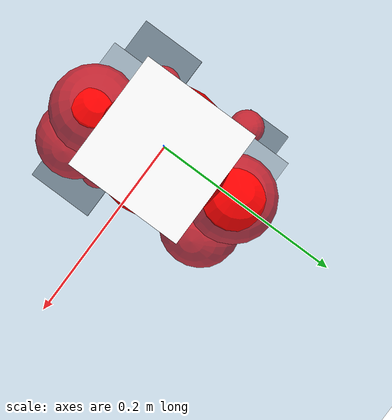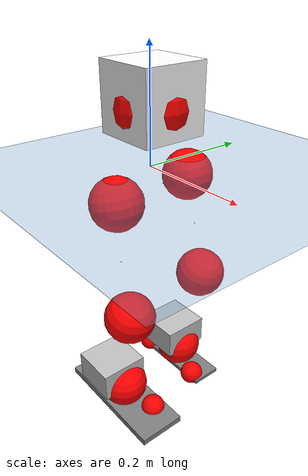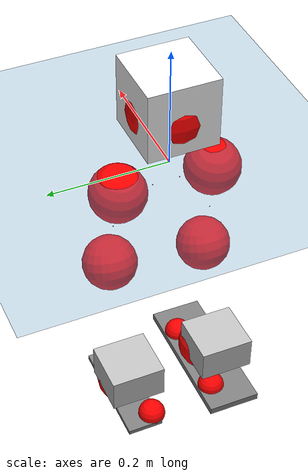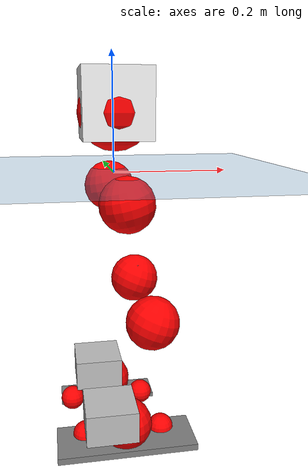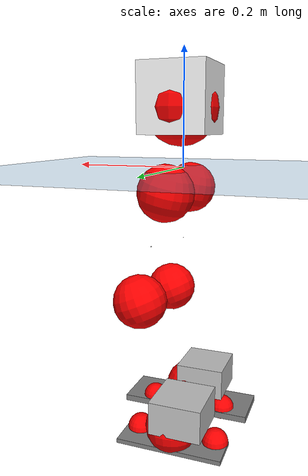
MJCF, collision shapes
<mujoco model="pi_12dof_release_v1">
  <compiler angle="radian" assetdir="assets" balanceinertia="true" inertiafromgeom="false"/>

  <option timestep="0.005" density="1.2" viscosity="2e-05"/>

  <size nkey="1"/>

  <visual>
    <quality shadowsize="8192"/>
    <map shadowclip="0.5"/>
  </visual>

  <default>
    <default class="/">
      <joint armature="0.01" damping="0.01" frictionloss="0.01"/>
      <geom contype="0" conaffinity="0" group="1" solref="-1000 -80"/>
      <site size="0.01 0.005 0.005" group="5"/>
      <general forcelimited="true" biastype="affine" gainprm="20" biasprm="0 -20 -0.5"/>
      <default class="foot">
        <geom size="0.0845 0.036 0.005" type="box" condim="6" group="4" priority="1" friction="0.9 0.2 0.2" solimp="0.015 1 0.005"/>
      </default>
      <default class="reward_collision_sphere">
        <geom group="5" rgba="1 0 0 1"/>
      </default>
    </default>
  </default>

  <asset>
    <texture type="skybox" colorspace="auto" name="//unnamed_texture_0" builtin="gradient" rgb1="0.95 0.95 0.95" rgb2="0.95 0.95 0.95" width="100" height="600"/>
    <texture type="2d" colorspace="auto" name="texplane" builtin="checker" rgb1="0.345 0.575 0.748" rgb2="0.345 0.575 0.748" markrgb="1 1 1" width="512" height="512"/>
    <material name="MatPlane" class="/" texture="texplane" texuniform="true" texrepeat="2 2" specular="0.9"/>
    <mesh name="baselink_1" class="/" file="baselink_1.STL"/>
    <mesh name="r_hip_pitch_link" class="/" file="r_hip_pitch_link.STL"/>
    <mesh name="r_hip_roll_link" class="/" file="r_hip_roll_link.STL"/>
    <mesh name="r_thigh_link" class="/" file="r_thigh_link.STL"/>
    <mesh name="r_calf_link" class="/" file="r_calf_link.STL"/>
    <mesh name="r_ankle_pitch_link" class="/" file="r_ankle_pitch_link.STL"/>
    <mesh name="r_ankle_roll_link" class="/" file="r_ankle_roll_link.STL"/>
    <mesh name="l_hip_pitch_link" class="/" file="l_hip_pitch_link.STL"/>
    <mesh name="l_hip_roll_link" class="/" file="l_hip_roll_link.STL"/>
    <mesh name="l_thigh_link" class="/" file="l_thigh_link.STL"/>
    <mesh name="l_calf_link" class="/" file="l_calf_link.STL"/>
    <mesh name="l_ankle_pitch_link" class="/" file="l_ankle_pitch_link.STL"/>
    <mesh name="l_ankle_roll_link" class="/" file="l_ankle_roll_link.STL"/>
  </asset>

  <worldbody>
    <geom name="floor" class="/" size="100 100 0.125" type="plane" group="0" material="MatPlane"/>
    <light name="toplight_shadow" class="/" pos="0 0 5" dir="0.0990148 0.0990148 -0.990148" type="directional" ambient="0.04 0.04 0.04" diffuse="0.55 0.55 0.55" specular="0.12 0.12 0.12"/>
    <light name="toplight_fill" class="/" pos="0 0 5" dir="0.0990148 0.0990148 -0.990148" type="directional" castshadow="false" ambient="0.04 0.04 0.04" diffuse="0.3 0.3 0.3" specular="0.08 0.08 0.08"/>
    <body name="trunk" pos="0.0039046 0.00204764 0.00152813" quat="0.999999 0.00100455 0.000572206 0.000918551">
      <inertial pos="0.004314 -0.00234344 0.0597233" quat="0.704529 0.00117063 -0.0116459 0.709578" mass="3.57814" diaginertia="0.0113433 0.0115128 0.0208298"/>
      <joint name="//unnamed_joint_0" type="free"/>
      <geom name="//unnamed_geom_1" class="/" type="mesh" density="0" rgba="1 1 1 1" mesh="baselink_1"/>
      <geom name="//unnamed_geom_2" class="/" size="0.0585532 0.0585532 0.0585532" pos="0 0 0.112888" type="box" rgba="1 1 1 1"/>
      <geom name="//unnamed_geom_3" class="reward_collision_sphere" size="0.0644086" pos="0 0 0.0987768"/>
      <site name="imu" class="/" pos="-0.010352 0.0447799 -0.000299049" size="0.0117106"/>
      <camera name="track" class="/" pos="0 -2.10166 0" quat="0.707107 0.707107 0 0" mode="trackcom"/>
      <camera name="ego_camera" class="/" pos="0.078845 0 0.253997" quat="-0.5 -0.5 0.5 0.5"/>
      <body name="r_hip_pitch_link" pos="0.00361063 -0.023284 -0.0439858" quat="0.992328 0.00370517 -0.123566 -0.00187136">
        <inertial pos="0.00255892 -0.0592113 -0.000224571" quat="-0.0289339 0.69616 -0.0167154 0.717109" mass="0.540546" diaginertia="0.000126499 0.000114143 0.000414059"/>
        <joint name="r_hip_pitch_joint" class="/" pos="0 0 0" axis="-0.00330127 -0.999994 0.00114838" stiffness="0.0322391" range="-1.71543 1.30083" armature="0.0128271" damping="0.0367006" frictionloss="0.0122358"/>
        <geom name="//unnamed_geom_4" class="/" type="mesh" density="0" rgba="0.75294 0.75294 0.75294 1" mesh="r_hip_pitch_link"/>
        <geom name="//unnamed_geom_5" class="/" size="0.000585532 0.000585532 0.000585532" type="box" rgba="0.75294 0.75294 0.75294 1"/>
        <body name="r_hip_roll_link" pos="0.00456292 -0.0592164 -0.000911606" quat="0.999999 0.00101158 -0.000206302 4.47187e-05">
          <inertial pos="-0.00104775 0.00724855 -0.0769066" quat="0.707614 -0.0776629 -0.0854112 0.697105" mass="0.624085" diaginertia="0.000449724 0.000373931 0.000751726"/>
          <joint name="r_hip_roll_joint" class="/" pos="0 0 0" axis="-0.999806 -0.00849619 0.0177422" stiffness="0.00964954" range="-0.0696289 0.359824" armature="0.0118362" damping="0.00397943" frictionloss="0.011459"/>
          <geom name="//unnamed_geom_6" class="/" type="mesh" density="0" rgba="0.75294 0.75294 0.75294 1" mesh="r_hip_roll_link"/>
          <geom name="//unnamed_geom_7" class="/" size="0.000585532 0.000585532 0.000585532" type="box" rgba="0.75294 0.75294 0.75294 1"/>
          <geom name="//unnamed_geom_8" class="reward_collision_sphere" size="0.0468426"/>
          <body name="r_thigh_link" pos="-0.00936069 -0.00769762 -0.101699" quat="1 -7.80162e-05 2.70519e-05 0.000140965">
            <inertial pos="-0.000241569 0.0033282 -0.0706091" quat="0.736507 0.676425 -0.000333733 0.00233281" mass="0.167683" diaginertia="0.000155467 0.000120913 0.000326519"/>
            <joint name="r_thigh_joint" class="/" pos="0 0 0" axis="-0.0136576 0.00529465 -0.999893" range="-0.286215 0.577015" armature="0.0128087" damping="0.0204771" frictionloss="0.0169967"/>
            <geom name="//unnamed_geom_9" class="/" type="mesh" density="0" rgba="0.75294 0.75294 0.75294 1" mesh="r_thigh_link"/>
            <geom name="//unnamed_geom_10" class="/" size="0.000585532 0.000585532 0.000585532" type="box" rgba="0.75294 0.75294 0.75294 1"/>
            <body name="r_calf_link" pos="-0.0011938 -0.00413948 -0.106917" quat="0.947651 4.71215e-06 0.319307 4.58366e-05">
              <inertial pos="-0.00166238 0.0023672 -0.0985784" quat="0.999171 -0.00864885 0.00490168 0.0394854" mass="1.18921" diaginertia="0.00418109 0.00403312 0.000903969"/>
              <joint name="r_calf_joint" class="/" pos="0 0 0" axis="0.00025053 -0.999953 -0.00972983" stiffness="0.0320446" range="-1.78849 0.658998" armature="0.0147421" damping="0.0183875" frictionloss="0.0109267"/>
              <geom name="//unnamed_geom_11" class="/" type="mesh" density="0" rgba="0.75294 0.75294 0.75294 1" mesh="r_calf_link"/>
              <geom name="//unnamed_geom_12" class="/" size="0.000585532 0.000585532 0.000585532" type="box" rgba="0.75294 0.75294 0.75294 1"/>
              <geom name="//unnamed_geom_13" class="reward_collision_sphere" size="0.0468426"/>
              <body name="r_ankle_pitch_link" pos="-0.00102143 0.00321815 -0.192354" quat="0.98012 0.000209505 -0.198407 0.000127647">
                <inertial pos="0.00405458 0.00381165 0.0076813" quat="-0.0010385 0.729312 0.030429 0.683503" mass="0.258225" diaginertia="0.00036615 0.000257769 0.000607813"/>
                <joint name="r_ankle_pitch_joint" class="/" pos="0 0 0" axis="2.84994e-05 -1 -0.000296669" range="-1.30492 0.333249" armature="0.0116093" damping="0.00341064" frictionloss="0.00814941"/>
                <geom name="//unnamed_geom_14" class="/" type="mesh" density="0" rgba="0.75294 0.75294 0.75294 1" mesh="r_ankle_pitch_link"/>
                <geom name="//unnamed_geom_15" class="/" size="0.0456715 0.0468426 0.0292766" type="box" rgba="0.75294 0.75294 0.75294 1"/>
                <body name="r_ankle_roll_link" pos="0.0830976 0.00720305 0.00309802" quat="1 -8.13814e-05 -3.93409e-05 -0.000116063">
                  <inertial pos="-0.0239172 0.00222086 -0.0297178" quat="0.554602 0.428419 0.433266 0.566706" mass="0.984357" diaginertia="0.00161179 0.00131349 0.0019181"/>
                  <joint name="r_ankle_roll_joint" class="/" pos="0 0 0" axis="-0.999431 0.00371788 -0.0335325" stiffness="0.00201297" range="-0.218148 0.273947" armature="0.0163202" damping="0" frictionloss="0.0129048"/>
                  <geom name="//unnamed_geom_16" class="/" type="mesh" density="0" rgba="0.75294 0.75294 0.75294 1" mesh="r_ankle_roll_link"/>
                  <geom name="//unnamed_geom_17" class="/" type="mesh" rgba="0.75294 0.75294 0.75294 1" mesh="r_ankle_roll_link"/>
                  <geom name="right_foot" class="foot" size="0.125626 0.045533 0.00605269" pos="-0.0536146 0 -0.0620883"/>
                  <geom name="//unnamed_geom_19" class="reward_collision_sphere" size="0.0468426" pos="-0.0525633 0 -0.0282219"/>
                  <geom name="//unnamed_geom_20" class="reward_collision_sphere" size="0.0234213" pos="0.015769 0.0210166 -0.0564439"/>
                  <geom name="//unnamed_geom_21" class="reward_collision_sphere" size="0.0234213" pos="-0.126152 0.0210166 -0.0564439"/>
                  <site name="right_foot" class="foot" pos="-0.0536146 0 -0.0620883" size="0.0117106"/>
                </body>
              </body>
            </body>
          </body>
        </body>
      </body>
      <body name="l_hip_pitch_link" pos="-0.00265154 0.0257578 -0.0392405" quat="0.992216 0.000138023 -0.124528 0.000394131">
        <inertial pos="1.32697e-05 0.0542356 0.00647112" quat="-0.043808 0.710285 0.0234395 0.702158" mass="0.557049" diaginertia="0.000148348 0.000136634 0.000562966"/>
        <joint name="l_hip_pitch_joint" class="/" pos="0 0 0" axis="0.0061124 0.999924 -0.0106741" range="-1.33256 1.7974" armature="0.00893324" damping="0.0292032" frictionloss="0.0105409"/>
        <geom name="//unnamed_geom_22" class="/" type="mesh" density="0" rgba="0.75294 0.75294 0.75294 1" mesh="l_hip_pitch_link"/>
        <geom name="//unnamed_geom_23" class="/" size="0.000585532 0.000585532 0.000585532" type="box" rgba="0.75294 0.75294 0.75294 1"/>
        <body name="l_hip_roll_link" pos="0.000488268 0.0581141 0.00249159" quat="1 0.000165077 -4.05951e-05 -0.000176074">
          <inertial pos="0.00436084 0.00278092 -0.0770043" quat="0.689783 -0.0567585 -0.0563108 0.719589" mass="0.605523" diaginertia="0.000464288 0.000359857 0.000775189"/>
          <joint name="l_hip_roll_joint" class="/" pos="0 0 0" axis="-1 -0.000430032 -6.22711e-06" range="-0.35248 0.0197601" armature="0.0128382" damping="0.0469214" frictionloss="0.0117095"/>
          <geom name="//unnamed_geom_24" class="/" type="mesh" density="0" rgba="0.75294 0.75294 0.75294 1" mesh="l_hip_roll_link"/>
          <geom name="//unnamed_geom_25" class="/" size="0.000585532 0.000585532 0.000585532" type="box" rgba="0.75294 0.75294 0.75294 1"/>
          <geom name="//unnamed_geom_26" class="reward_collision_sphere" size="0.0468426"/>
          <body name="l_thigh_link" pos="0.00272783 -0.000898287 -0.0930668" quat="1 0.000560403 -0.000454818 -0.000218344">
            <inertial pos="-0.00225029 0.00134919 -0.070403" quat="0.659562 0.75152 0.00530178 -0.0129327" mass="0.190761" diaginertia="0.000161238 0.000120702 0.000323067"/>
            <joint name="l_thigh_joint" class="/" pos="0 0 0" axis="-0.00173888 0.00201983 -0.999996" stiffness="0.0404362" range="-0.594096 0.335593" armature="0.0119667" damping="0.00460119" frictionloss="0.0104729"/>
            <geom name="//unnamed_geom_27" class="/" type="mesh" density="0" rgba="0.75294 0.75294 0.75294 1" mesh="l_thigh_link"/>
            <geom name="//unnamed_geom_28" class="/" size="0.000585532 0.000585532 0.000585532" type="box" rgba="0.75294 0.75294 0.75294 1"/>
            <body name="l_calf_link" pos="-0.00338767 -0.000948895 -0.101169" quat="0.947667 0.00010683 0.31926 -7.66441e-06">
              <inertial pos="0.000373598 -0.00250804 -0.0946481" quat="0.999986 0.00282848 -0.0015989 0.00415063" mass="1.42834" diaginertia="0.00487373 0.00484442 0.00107055"/>
              <joint name="l_calf_joint" class="/" pos="0 0 0" axis="-0.00310376 0.999973 0.0066782" stiffness="0.00992364" range="-0.821798 1.51626" armature="0.0116223" damping="0.00815752" frictionloss="0.0118922"/>
              <geom name="//unnamed_geom_29" class="/" type="mesh" density="0" rgba="0.75294 0.75294 0.75294 1" mesh="l_calf_link"/>
              <geom name="//unnamed_geom_30" class="/" size="0.000585532 0.000585532 0.000585532" type="box" rgba="0.75294 0.75294 0.75294 1"/>
              <geom name="//unnamed_geom_31" class="reward_collision_sphere" size="0.0468426"/>
              <body name="l_ankle_pitch_link" pos="0.000934889 0.000955355 -0.205272" quat="0.980162 0.000131721 -0.1982 0.000323974">
                <inertial pos="0.00763925 -0.00480858 0.000701644" quat="-0.00562743 0.707066 0.00198693 0.707122" mass="0.321465" diaginertia="0.000416382 0.000295123 0.000668888"/>
                <joint name="l_ankle_pitch_joint" class="/" pos="0 0 0" axis="0.00780478 0.999969 0.000966526" range="-0.369829 1.2751" armature="0.014393" damping="0" frictionloss="0.0125692"/>
                <geom name="//unnamed_geom_32" class="/" type="mesh" density="0" rgba="0.75294 0.75294 0.75294 1" mesh="l_ankle_pitch_link"/>
                <geom name="//unnamed_geom_33" class="/" size="0.0456715 0.0468426 0.0292766" type="box" rgba="0.75294 0.75294 0.75294 1"/>
                <body name="l_ankle_roll_link" pos="0.0712933 0.00160378 -0.00441417" quat="0.999999 -0.000314932 -0.000114537 0.000950379">
                  <inertial pos="-0.0257815 -9.8727e-05 -0.0204489" quat="0.565404 0.429557 0.437681 0.551575" mass="0.915881" diaginertia="0.00148478 0.00134025 0.00169333"/>
                  <joint name="l_ankle_roll_joint" class="/" pos="0 0 0" axis="-0.999997 0.00181676 0.00133061" stiffness="0.000692971" range="-0.149487 0.158033" armature="0.00908622" damping="0.000893118" frictionloss="0.0115576"/>
                  <geom name="//unnamed_geom_34" class="/" type="mesh" density="0" rgba="0.75294 0.75294 0.75294 1" mesh="l_ankle_roll_link"/>
                  <geom name="//unnamed_geom_35" class="/" type="mesh" rgba="0.75294 0.75294 0.75294 1" mesh="l_ankle_roll_link"/>
                  <geom name="left_foot" class="foot" size="0.0950274 0.0306127 0.00392688" pos="-0.0536146 0 -0.0620883"/>
                  <geom name="//unnamed_geom_37" class="reward_collision_sphere" size="0.0468426" pos="-0.0525633 0 -0.0282219"/>
                  <geom name="//unnamed_geom_38" class="reward_collision_sphere" size="0.0234213" pos="0.015769 -0.0210166 -0.0564439"/>
                  <geom name="//unnamed_geom_39" class="reward_collision_sphere" size="0.0234213" pos="-0.126152 -0.0210166 -0.0564439"/>
                  <site name="left_foot" class="foot" pos="-0.0536146 0 -0.0620883" size="0.0117106"/>
                </body>
              </body>
            </body>
          </body>
        </body>
      </body>
    </body>
  </worldbody>

  <contact>
    <pair class="/" geom1="floor" geom2="right_foot" name="//unnamed_contact_1"/>
    <pair class="/" geom1="floor" geom2="left_foot" name="//unnamed_contact_0"/>
  </contact>

  <actuator>
    <general name="r_hip_pitch_joint" class="/" joint="r_hip_pitch_joint" forcerange="-24.8572 24.8572" gainprm="23.0608" biasprm="0 -23.0608 -0.651944"/>
    <general name="r_hip_roll_joint" class="/" joint="r_hip_roll_joint" forcerange="-30.4333 30.4333" gainprm="23.0608" biasprm="0 -23.0608 -0.651944"/>
    <general name="r_thigh_joint" class="/" joint="r_thigh_joint" forcerange="-23.0702 23.0702" gainprm="23.0608" biasprm="0 -23.0608 -0.651944"/>
    <general name="r_calf_joint" class="/" joint="r_calf_joint" forcerange="-24.1196 24.1196" gainprm="23.0608" biasprm="0 -23.0608 -0.651944"/>
    <general name="r_ankle_pitch_joint" class="/" joint="r_ankle_pitch_joint" forcerange="-24.5466 24.5466" gainprm="23.0608" biasprm="0 -23.0608 -0.651944"/>
    <general name="r_ankle_roll_joint" class="/" joint="r_ankle_roll_joint" forcerange="-22.7399 22.7399" gainprm="23.0608" biasprm="0 -23.0608 -0.651944"/>
    <general name="l_hip_pitch_joint" class="/" joint="l_hip_pitch_joint" forcerange="-26.5459 26.5459" gainprm="23.0608" biasprm="0 -23.0608 -0.651944"/>
    <general name="l_hip_roll_joint" class="/" joint="l_hip_roll_joint" forcerange="-19.3093 19.3093" gainprm="23.0608" biasprm="0 -23.0608 -0.651944"/>
    <general name="l_thigh_joint" class="/" joint="l_thigh_joint" forcerange="-30.8752 30.8752" gainprm="23.0608" biasprm="0 -23.0608 -0.651944"/>
    <general name="l_calf_joint" class="/" joint="l_calf_joint" forcerange="-26.6917 26.6917" gainprm="23.0608" biasprm="0 -23.0608 -0.651944"/>
    <general name="l_ankle_pitch_joint" class="/" joint="l_ankle_pitch_joint" forcerange="-22.1568 22.1568" gainprm="23.0608" biasprm="0 -23.0608 -0.651944"/>
    <general name="l_ankle_roll_joint" class="/" joint="l_ankle_roll_joint" forcerange="-15.978 15.978" gainprm="23.0608" biasprm="0 -23.0608 -0.651944"/>
  </actuator>

  <sensor>
    <gyro site="imu" name="imu_angular_velocity"/>
    <velocimeter site="imu" name="imu_linear_velocity"/>
    <framelinvel objtype="site" objname="left_foot" name="left_foot_global_linear_velocity"/>
    <framelinvel objtype="site" objname="right_foot" name="right_foot_global_linear_velocity"/>
  </sensor>

  <keyframe>
    <key name="home" qpos="0 0 0.291 1 0 0 0 0.4 0 0 -0.8 0.4 0 -0.4 0 0 0.8 -0.4 0"/>
  </keyframe>
</mujoco>
